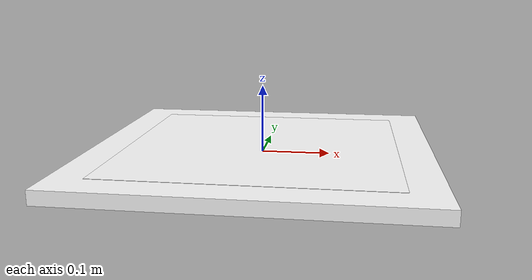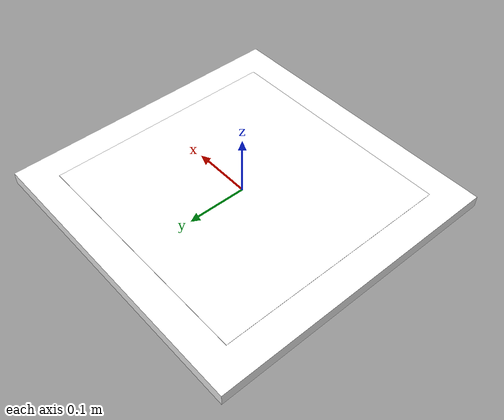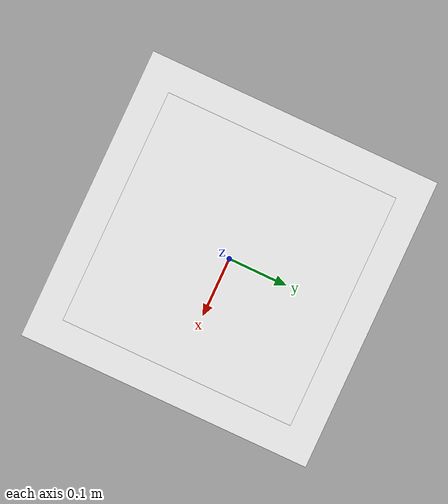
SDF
<?xml version="1.0" ?>
<sdf version="1.5">
  <model name="land_pad">
    <pose>0.0 0.0 0.0 0 0 0</pose>
    <link name="link">
        <inertial>
        <pose>0 0 0 0 0 0</pose>
        <mass>10.0</mass>
        <inertia>
          <ixx>0.01</ixx>
          <ixy>0</ixy>
          <ixz>0</ixz>
          <iyy>0.01</iyy>
          <iyz>0</iyz>
          <izz>0.01</izz>
        </inertia>
      </inertial>
      <kinematic>true</kinematic>
      <collision name="collision">
        <geometry>
          <box>
            <size>0.5 0.5 0.01</size>
          </box>
        </geometry>
        <surface>
          <friction>
            <ode>
              <mu>1.0</mu>
              <mu2>1.0</mu2>
              <fdir1>1 0 0</fdir1>
            </ode>
          </friction>
          <contact>
            <ode>
              <kp>1e+12</kp>
              <kd>1</kd>
              <max_vel>10</max_vel>
              <min_depth>0.003</min_depth>
            </ode>
          </contact>
        </surface>
      </collision>
      <visual name="visual">
        <geometry>
          <box>
            <size>0.5 0.5 0.02</size>
          </box>
        </geometry>
        <!-- Aruco marker as the land pad structure -->
        <material>
          <diffuse>1.0 1.0 1.0</diffuse>
          <specular>1.0 1.0 1.0</specular>
        </material>
      </visual>
    </link>

    <link name="pic_link">
      <pose>0 0 0.01 0 0 0</pose>
      <visual name="visual">
        <geometry>
          <box>
            <size>0.4 0.4 0.001</size>
          </box>
        </geometry>
        <!-- Aruco marker as the land pad structure -->
        <material>
          <diffuse>1.0 1.0 1.0</diffuse>
          <specular>1.0 1.0 1.0</specular>
          <pbr>
            <metal>
              <albedo_map>model://land_pad/materials/textures/aruco_in_aruco.png</albedo_map>
            </metal>
          </pbr>
        </material>
      </visual>
    </link>

    <joint name="pic_joint" type="fixed">
      <parent>link</parent>
      <child>pic_link</child>
      <axis>
        <xyz>0 1 0</xyz>
      </axis>
    </joint>

  </model>
</sdf>
